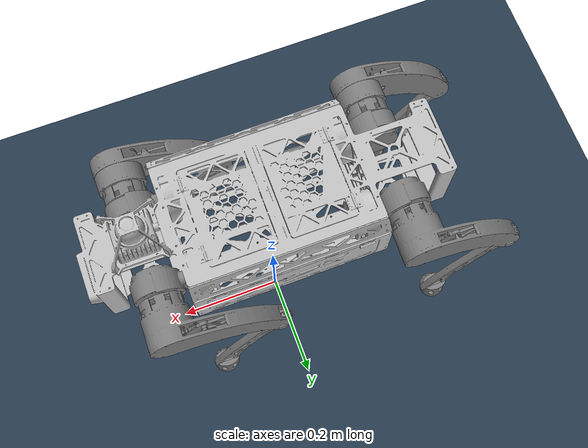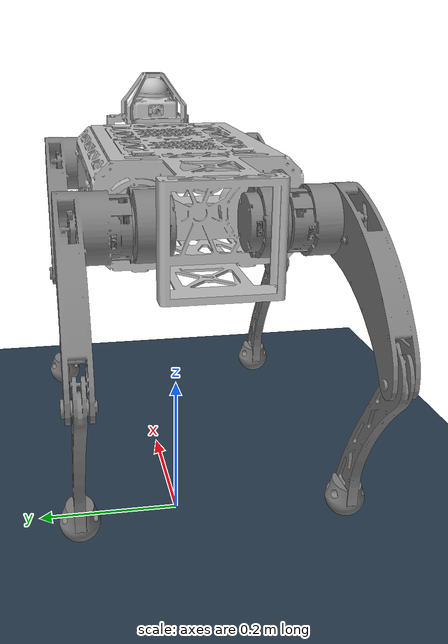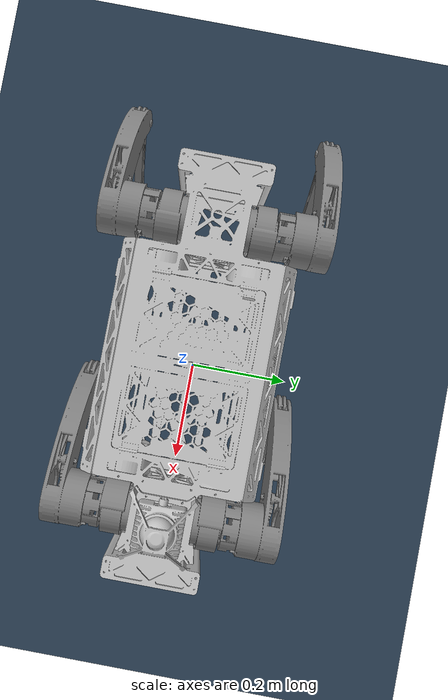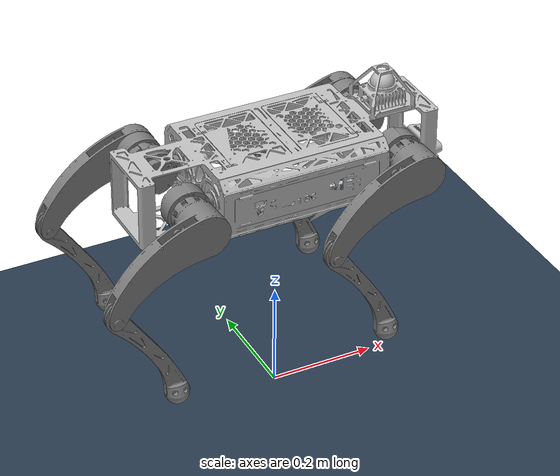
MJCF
<mujoco model="Legged_Robot">
  <compiler angle="radian" autolimits="true" eulerseq="zyx"/>
  <option timestep='0.001' iterations='100' solver='PGS' gravity='0 0 -9.81'>
    <flag frictionloss="enable"/>
  </option>
  <size njmax="500" nconmax="100" />

  <default>
    <joint limited='true'/>
    <motor ctrllimited='true'/>
    <geom condim='4' contype="1" conaffinity="15" solref='0.001 2' friction='0.9 0.2 0.2'/>
    <default class='leg_joint_param'>
      <joint damping="0.5" frictionloss="0.01" armature="0.01"/>
    </default>
  </default>

  <asset>
    <mesh name="base_link" file="/home/ares/Desktop/DOGV2.2.4.SLDASM/DOGV2.2.4.SLDASM/meshes/base_link.STL"/>
    <mesh name="LF_HipA_link" file="/home/ares/Desktop/DOGV2.2.4.SLDASM/DOGV2.2.4.SLDASM/meshes/LF_HipA_link.STL"/>
    <mesh name="LF_HipF_link" file="/home/ares/Desktop/DOGV2.2.4.SLDASM/DOGV2.2.4.SLDASM/meshes/LF_HipF_link.STL"/>
    <mesh name="LF_Knee_link" file="/home/ares/Desktop/DOGV2.2.4.SLDASM/DOGV2.2.4.SLDASM/meshes/LF_Knee_link.STL"/>
    <mesh name="LF_Foot_link" file="/home/ares/Desktop/DOGV2.2.4.SLDASM/DOGV2.2.4.SLDASM/meshes/LF_Foot_link.STL"/>
    <mesh name="LR_HipA_link" file="/home/ares/Desktop/DOGV2.2.4.SLDASM/DOGV2.2.4.SLDASM/meshes/LR_HipA_link.STL"/>
    <mesh name="LR_HipF_link" file="/home/ares/Desktop/DOGV2.2.4.SLDASM/DOGV2.2.4.SLDASM/meshes/LR_HipF_link.STL"/>
    <mesh name="LR_Knee_link" file="/home/ares/Desktop/DOGV2.2.4.SLDASM/DOGV2.2.4.SLDASM/meshes/LR_Knee_link.STL"/>
    <mesh name="LR_Foot_link" file="/home/ares/Desktop/DOGV2.2.4.SLDASM/DOGV2.2.4.SLDASM/meshes/LR_Foot_link.STL"/>
    <mesh name="RF_HipA_link" file="/home/ares/Desktop/DOGV2.2.4.SLDASM/DOGV2.2.4.SLDASM/meshes/RF_HipA_link.STL"/>
    <mesh name="RF_HipF_link" file="/home/ares/Desktop/DOGV2.2.4.SLDASM/DOGV2.2.4.SLDASM/meshes/RF_HipF_link.STL"/>
    <mesh name="RF_Knee_link" file="/home/ares/Desktop/DOGV2.2.4.SLDASM/DOGV2.2.4.SLDASM/meshes/RF_Knee_link.STL"/>
    <mesh name="RF_Foot_link" file="/home/ares/Desktop/DOGV2.2.4.SLDASM/DOGV2.2.4.SLDASM/meshes/RF_Foot_link.STL"/>
    <mesh name="RR_HipA_link" file="/home/ares/Desktop/DOGV2.2.4.SLDASM/DOGV2.2.4.SLDASM/meshes/RR_HipA_link.STL"/>
    <mesh name="RR_HipF_link" file="/home/ares/Desktop/DOGV2.2.4.SLDASM/DOGV2.2.4.SLDASM/meshes/RR_HipF_link.STL"/>
    <mesh name="RR_Knee_link" file="/home/ares/Desktop/DOGV2.2.4.SLDASM/DOGV2.2.4.SLDASM/meshes/RR_Knee_link.STL"/>
    <mesh name="RR_Foot_link" file="/home/ares/Desktop/DOGV2.2.4.SLDASM/DOGV2.2.4.SLDASM/meshes/RR_Foot_link.STL"/>

    <material name="matplane" reflectance="0.3" texture="texplane" texrepeat="1 1" texuniform="true"/>
    <texture name="texplane" type="2d" builtin="checker" rgb1=".2 .3 .4" rgb2=".1 0.15 0.2" width="512" height="512"/>
  </asset>

  <worldbody>
    <light directional="true" diffuse=".4 .4 .4" pos="0 0 5.0" dir="0 0 -1"/>
    <geom name="floor" type="plane" size="0 0 1" pos="0 0 0" material="matplane" condim="3" friction='0.9 0.2 0.2'/>

    <body name="base_link" pos="0 0 0.42">
      <freejoint name="floating_base"/>
      <site name='imu' size='0.01' pos='0 0 0'/>
      <inertial pos="-0.0084 -0.0004 0.144" quat="0.706 0.705 0.035 -0.062" mass="5.207" diaginertia="0.109 0.069 0.059"/>
      <geom type="mesh" mesh="base_link" rgba="0.75 0.75 0.75 1" contype="0" conaffinity="0" group="1"/>

      <body name="LF_HipA_link" pos="0.16 0.0675 0.063" quat="0.5 0.5 0.5 0.5">
        <joint name="LF_HipA_joint" axis="0 0 1" range="-0.7853982 0.7853982" class="leg_joint_param"/>
        <geom type="mesh" mesh="LF_HipA_link"/>
        <body name="LF_HipF_link" pos="0.018 0 0.048" quat="0.707 0 0.707 0">
          <joint name="LF_HipF_joint" axis="0 0 1" range="-1.2217658 0.8726683" class="leg_joint_param"/>
          <geom type="mesh" mesh="LF_HipF_link"/>
          <body name="LF_Knee_link" pos="0.1707 -0.1222 0.05">
            <joint name="LF_Knee_joint" axis="0 0 1" range="-1.2217299 0.69813" class="leg_joint_param"/>
            <geom type="mesh" mesh="LF_Knee_link"/>
            <site name="LF_foot_site" pos="-0.11 -0.19 0.016" size="0.01"/>
            <geom name="LF_foot" type="mesh" mesh="LF_Foot_link" pos="-0.11 -0.19 0.016" quat="0 0 0.707 0.707" condim="3"/>
          </body>
        </body>
      </body>

      <body name="LR_HipA_link" pos="-0.16 0.0675 0.063" quat="0.5 0.5 -0.5 -0.5">
        <joint name="LR_HipA_joint" axis="0 0 1" range="-0.7853982 0.7853982" class="leg_joint_param"/>
        <geom type="mesh" mesh="LR_HipA_link"/>
        <body name="LR_HipF_link" pos="-0.018 0 0.048" quat="0.707 0 -0.707 0">
          <joint name="LR_HipF_joint" axis="0 0 1" range="-1.2217305 0.8726683" class="leg_joint_param"/>
          <geom type="mesh" mesh="LR_HipF_link"/>
          <body name="LR_Knee_link" pos="0.1707 -0.1222 0.05">
            <joint name="LR_Knee_joint" axis="0 0 1" range="-1.2217299 0.69813" class="leg_joint_param"/>
            <geom type="mesh" mesh="LR_Knee_link"/>
            <site name="LR_foot_site" pos="-0.11 -0.19 0.016" size="0.01"/>
            <geom name="LR_foot" type="mesh" mesh="LR_Foot_link" pos="-0.11 -0.19 0.016" quat="0 0 -0.707 -0.707" condim="3"/>
          </body>
        </body>
      </body>

      <body name="RF_HipA_link" pos="0.16 -0.0675 0.063" quat="0.5 0.5 0.5 0.5">
        <joint name="RF_HipA_joint" axis="0 0 1" range="-0.7853982 0.7853982" class="leg_joint_param"/>
        <geom type="mesh" mesh="RF_HipA_link"/>
        <body name="RF_HipF_link" pos="-0.018 0 0.048" quat="0.707 0 -0.707 0">
          <joint name="RF_HipF_joint" axis="0 0 1" range="-0.8726999 1.2217342" class="leg_joint_param"/>
          <geom type="mesh" mesh="RF_HipF_link"/>
          <body name="RF_Knee_link" pos="-0.1707 -0.1222 0.05">
            <joint name="RF_Knee_joint" axis="0 0 1" range="-0.6981312 1.2217287" class="leg_joint_param"/>
            <geom type="mesh" mesh="RF_Knee_link"/>
            <site name="RF_foot_site" pos="0.11 -0.19 0.016" size="0.01"/>
            <geom name="RF_foot" type="mesh" mesh="RF_Foot_link" pos="0.11 -0.19 0.016" quat="0.707 -0.707 0 0" condim="3"/>
          </body>
        </body>
      </body>

      <body name="RR_HipA_link" pos="-0.16 -0.0675 0.063" quat="0.5 0.5 -0.5 -0.5">
        <joint name="RR_HipA_joint" axis="0 0 1" range="-0.7853982 0.7853982" class="leg_joint_param"/>
        <geom type="mesh" mesh="RR_HipA_link"/>
        <body name="RR_HipF_link" pos="0.018 0 0.048" quat="0.707 0 0.707 0">
          <joint name="RR_HipF_joint" axis="0 0 1" range="-0.8726999 1.2217305" class="leg_joint_param"/>
          <geom type="mesh" mesh="RR_HipF_link"/>
          <body name="RR_Knee_link" pos="-0.1707 -0.1222 0.05">
            <joint name="RR_Knee_joint" axis="0 0 1" range="-0.6981312 1.2217287" class="leg_joint_param"/>
            <geom type="mesh" mesh="RR_Knee_link"/>
            <site name="RR_foot_site" pos="0.11 -0.19 0.016" size="0.01"/>
            <geom name="RR_foot" type="mesh" mesh="RR_Foot_link" pos="0.11 -0.19 0.016" quat="0.707 -0.707 0 0" condim="3"/>
          </body>
        </body>
      </body>
    </body>
  </worldbody>

  <actuator>
    <position name="LF_HipA" joint="LF_HipA_joint" kp="25" kv="0.5" forcerange="-17 17" ctrlrange="-0.7853982 0.7853982"/>
    <position name="LF_HipF" joint="LF_HipF_joint" kp="25" kv="0.5" forcerange="-17 17" ctrlrange="-1.2217658 0.8726683"/>
    <position name="LF_Knee" joint="LF_Knee_joint" kp="25" kv="0.5" forcerange="-25 25" ctrlrange="-1.2217299 0.69813"/>

    <position name="LR_HipA" joint="LR_HipA_joint" kp="25" kv="0.5" forcerange="-17 17" ctrlrange="-0.7853982 0.7853982"/>
    <position name="LR_HipF" joint="LR_HipF_joint" kp="25" kv="0.5" forcerange="-17 17" ctrlrange="-1.2217305 0.8726683"/>
    <position name="LR_Knee" joint="LR_Knee_joint" kp="25" kv="0.5" forcerange="-25 25" ctrlrange="-1.2217299 0.69813"/>

    <position name="RF_HipA" joint="RF_HipA_joint" kp="25" kv="0.5" forcerange="-17 17" ctrlrange="-0.7853982 0.7853982"/>
    <position name="RF_HipF" joint="RF_HipF_joint" kp="25" kv="0.5" forcerange="-17 17" ctrlrange="-0.8726999 1.2217342"/>
    <position name="RF_Knee" joint="RF_Knee_joint" kp="25" kv="0.5" forcerange="-25 25" ctrlrange="-0.6981312 1.2217287"/>

    <position name="RR_HipA" joint="RR_HipA_joint" kp="25" kv="0.5" forcerange="-17 17" ctrlrange="-0.7853982 0.7853982"/>
    <position name="RR_HipF" joint="RR_HipF_joint" kp="25" kv="0.5" forcerange="-17 17" ctrlrange="-0.8726999 1.2217305"/>
    <position name="RR_Knee" joint="RR_Knee_joint" kp="25" kv="0.5" forcerange="-25 25" ctrlrange="-0.6981312 1.2217287"/>
  </actuator>

  <sensor>
    <framequat name="orientation" objtype="site" objname="imu" noise="0.001"/>
    <framepos name="position" objtype="site" objname="imu" noise="0.001"/>
    <gyro name="angular-velocity" site="imu" noise="0.005"/>
    <velocimeter name="linear-velocity" site="imu" noise="0.001"/>
    <accelerometer name="linear-acceleration" site="imu" noise="0.005"/>
    <touch name="LF_touch" site="LF_foot_site"/>
    <touch name="LR_touch" site="LR_foot_site"/>
    <touch name="RF_touch" site="RF_foot_site"/>
    <touch name="RR_touch" site="RR_foot_site"/>
  </sensor>
</mujoco>
